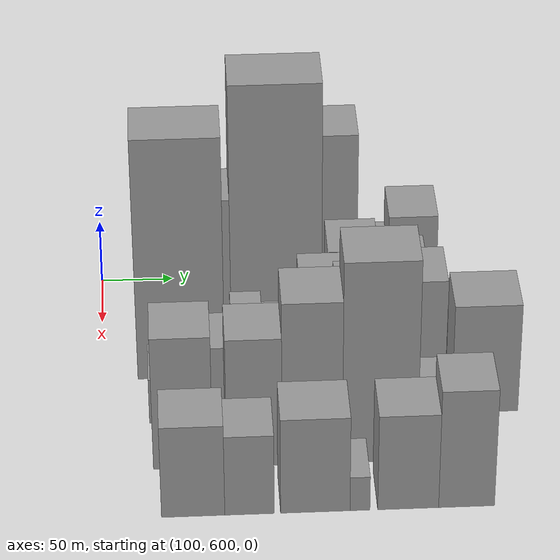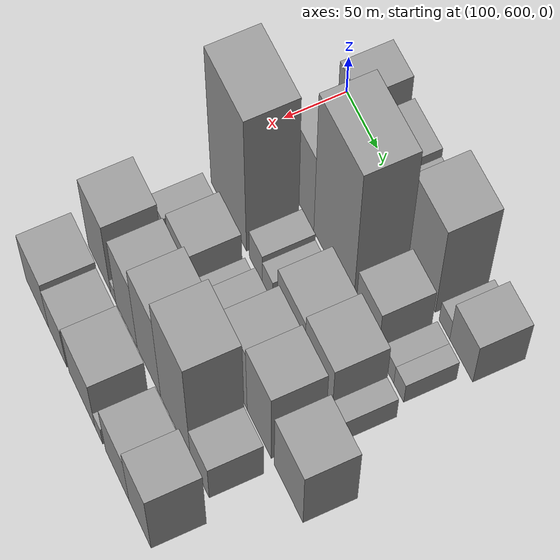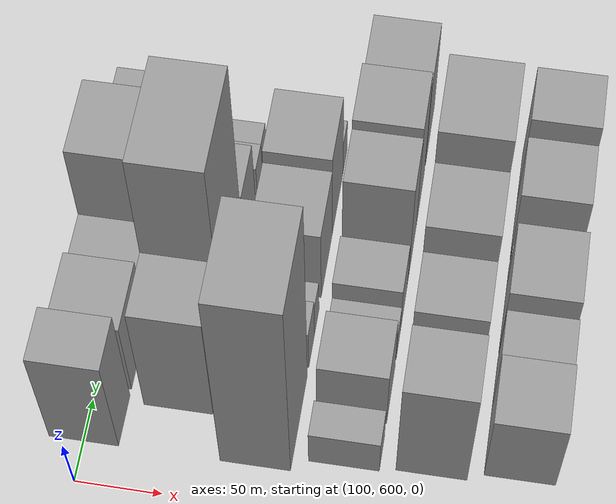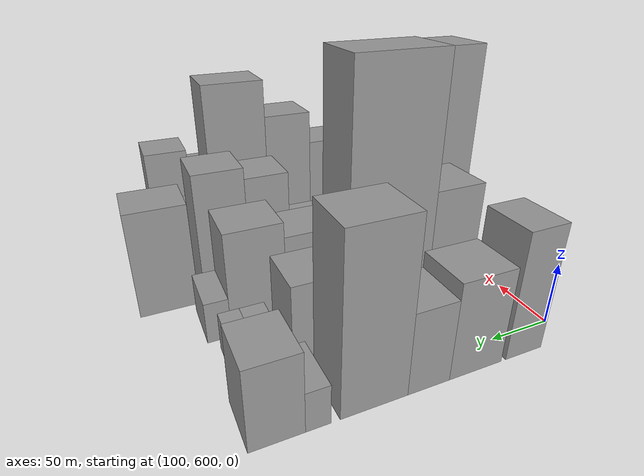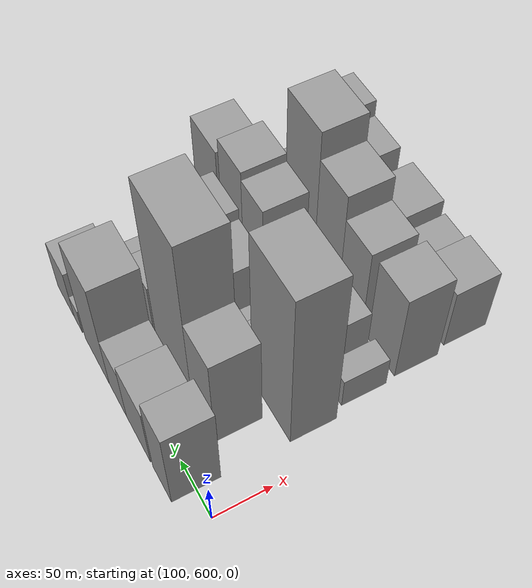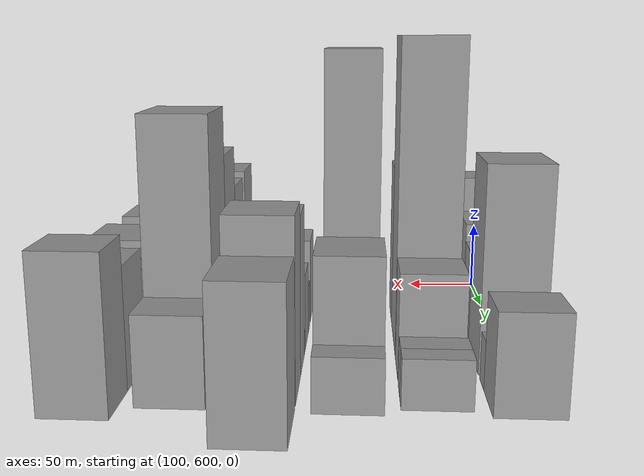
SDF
<sdf version="1.6">
 <world name="default">
  <model name="building_43">
   <static>1</static>
   <pose>100.0000 640.0904 0 0.000000 0.000000 0.000000</pose>
   <link name="link">
    <pose>0 0 49.50 0 0 0</pose>
    <collision name="collision"><geometry><box><size>40.0000 31.3254 99.0000</size></box></geometry></collision>
    <visual name="visual">
     <cast_shadows>0</cast_shadows>
     <geometry><box><size>40.0000 31.3254 99.0000</size></box></geometry>
     <material>
      <script>
       <uri>model://grey_wall/materials/scripts</uri>
       <uri>model://grey_wall/materials/textures</uri>
       <name>vrc/grey_wall</name>
      </script>
     </material>
    </visual>
   </link>
  </model>
  <model name="building_44">
   <static>1</static>
   <pose>100.0000 680.9795 0 0.000000 0.000000 0.000000</pose>
   <link name="link">
    <pose>0 0 37.50 0 0 0</pose>
    <collision name="collision"><geometry><box><size>40.0000 42.4528 75.0000</size></box></geometry></collision>
    <visual name="visual">
     <cast_shadows>0</cast_shadows>
     <geometry><box><size>40.0000 42.4528 75.0000</size></box></geometry>
     <material>
      <script>
       <uri>model://grey_wall/materials/scripts</uri>
       <uri>model://grey_wall/materials/textures</uri>
       <name>vrc/grey_wall</name>
      </script>
     </material>
    </visual>
   </link>
  </model>
  <model name="building_45">
   <static>1</static>
   <pose>100.0000 717.9744 0 0.000000 0.000000 0.000000</pose>
   <link name="link">
    <pose>0 0 31.50 0 0 0</pose>
    <collision name="collision"><geometry><box><size>40.0000 31.5372 63.0000</size></box></geometry></collision>
    <visual name="visual">
     <cast_shadows>0</cast_shadows>
     <geometry><box><size>40.0000 31.5372 63.0000</size></box></geometry>
     <material>
      <script>
       <uri>model://grey_wall/materials/scripts</uri>
       <uri>model://grey_wall/materials/textures</uri>
       <name>vrc/grey_wall</name>
      </script>
     </material>
    </visual>
   </link>
  </model>
  <model name="building_46">
   <static>1</static>
   <pose>100.0000 757.1625 0 0.000000 0.000000 0.000000</pose>
   <link name="link">
    <pose>0 0 64.50 0 0 0</pose>
    <collision name="collision"><geometry><box><size>40.0000 46.8390 129.0000</size></box></geometry></collision>
    <visual name="visual">
     <cast_shadows>0</cast_shadows>
     <geometry><box><size>40.0000 46.8390 129.0000</size></box></geometry>
     <material>
      <script>
       <uri>model://grey_wall/materials/scripts</uri>
       <uri>model://grey_wall/materials/textures</uri>
       <name>vrc/grey_wall</name>
      </script>
     </material>
    </visual>
   </link>
  </model>
  <model name="building_47">
   <static>1</static>
   <pose>100.0000 794.6642 0 0.000000 0.000000 0.000000</pose>
   <link name="link">
    <pose>0 0 15.00 0 0 0</pose>
    <collision name="collision"><geometry><box><size>40.0000 16.1645 30.0000</size></box></geometry></collision>
    <visual name="visual">
     <cast_shadows>0</cast_shadows>
     <geometry><box><size>40.0000 16.1645 30.0000</size></box></geometry>
     <material>
      <script>
       <uri>model://grey_wall/materials/scripts</uri>
       <uri>model://grey_wall/materials/textures</uri>
       <name>vrc/grey_wall</name>
      </script>
     </material>
    </visual>
   </link>
  </model>
  <model name="building_48">
   <static>1</static>
   <pose>100.0000 820.0291 0 0.000000 0.000000 0.000000</pose>
   <link name="link">
    <pose>0 0 30.00 0 0 0</pose>
    <collision name="collision"><geometry><box><size>40.0000 34.5654 60.0000</size></box></geometry></collision>
    <visual name="visual">
     <cast_shadows>0</cast_shadows>
     <geometry><box><size>40.0000 34.5654 60.0000</size></box></geometry>
     <material>
      <script>
       <uri>model://grey_wall/materials/scripts</uri>
       <uri>model://grey_wall/materials/textures</uri>
       <name>vrc/grey_wall</name>
      </script>
     </material>
    </visual>
   </link>
  </model>
  <model name="building_89">
   <static>1</static>
   <pose>149.0000 670.5965 0 0.000000 0.000000 0.000000</pose>
   <link name="link">
    <pose>0 0 55.50 0 0 0</pose>
    <collision name="collision"><geometry><box><size>40.0000 38.0225 111.0000</size></box></geometry></collision>
    <visual name="visual">
     <cast_shadows>0</cast_shadows>
     <geometry><box><size>40.0000 38.0225 111.0000</size></box></geometry>
     <material>
      <script>
       <uri>model://grey_wall/materials/scripts</uri>
       <uri>model://grey_wall/materials/textures</uri>
       <name>vrc/grey_wall</name>
      </script>
     </material>
    </visual>
   </link>
  </model>
  <model name="building_90">
   <static>1</static>
   <pose>149.0000 721.1269 0 0.000000 0.000000 0.000000</pose>
   <link name="link">
    <pose>0 0 100.50 0 0 0</pose>
    <collision name="collision"><geometry><box><size>40.0000 63.0383 201.0000</size></box></geometry></collision>
    <visual name="visual">
     <cast_shadows>0</cast_shadows>
     <geometry><box><size>40.0000 63.0383 201.0000</size></box></geometry>
     <material>
      <script>
       <uri>model://grey_wall/materials/scripts</uri>
       <uri>model://grey_wall/materials/textures</uri>
       <name>vrc/grey_wall</name>
      </script>
     </material>
    </visual>
   </link>
  </model>
  <model name="building_91">
   <static>1</static>
   <pose>149.0000 774.1519 0 0.000000 0.000000 0.000000</pose>
   <link name="link">
    <pose>0 0 33.00 0 0 0</pose>
    <collision name="collision"><geometry><box><size>40.0000 35.0117 66.0000</size></box></geometry></collision>
    <visual name="visual">
     <cast_shadows>0</cast_shadows>
     <geometry><box><size>40.0000 35.0117 66.0000</size></box></geometry>
     <material>
      <script>
       <uri>model://grey_wall/materials/scripts</uri>
       <uri>model://grey_wall/materials/textures</uri>
       <name>vrc/grey_wall</name>
      </script>
     </material>
    </visual>
   </link>
  </model>
  <model name="building_92">
   <static>1</static>
   <pose>149.0000 806.5773 0 0.000000 0.000000 0.000000</pose>
   <link name="link">
    <pose>0 0 15.00 0 0 0</pose>
    <collision name="collision"><geometry><box><size>40.0000 17.8391 30.0000</size></box></geometry></collision>
    <visual name="visual">
     <cast_shadows>0</cast_shadows>
     <geometry><box><size>40.0000 17.8391 30.0000</size></box></geometry>
     <material>
      <script>
       <uri>model://grey_wall/materials/scripts</uri>
       <uri>model://grey_wall/materials/textures</uri>
       <name>vrc/grey_wall</name>
      </script>
     </material>
    </visual>
   </link>
  </model>
  <model name="building_93">
   <static>1</static>
   <pose>149.0000 823.0445 0 0.000000 0.000000 0.000000</pose>
   <link name="link">
    <pose>0 0 15.00 0 0 0</pose>
    <collision name="collision"><geometry><box><size>40.0000 15.0952 30.0000</size></box></geometry></collision>
    <visual name="visual">
     <cast_shadows>0</cast_shadows>
     <geometry><box><size>40.0000 15.0952 30.0000</size></box></geometry>
     <material>
      <script>
       <uri>model://grey_wall/materials/scripts</uri>
       <uri>model://grey_wall/materials/textures</uri>
       <name>vrc/grey_wall</name>
      </script>
     </material>
    </visual>
   </link>
  </model>
  <model name="building_139">
   <static>1</static>
   <pose>198.0000 653.9900 0 0.000000 0.000000 0.000000</pose>
   <link name="link">
    <pose>0 0 96.00 0 0 0</pose>
    <collision name="collision"><geometry><box><size>40.0000 59.1294 192.0000</size></box></geometry></collision>
    <visual name="visual">
     <cast_shadows>0</cast_shadows>
     <geometry><box><size>40.0000 59.1294 192.0000</size></box></geometry>
     <material>
      <script>
       <uri>model://grey_wall/materials/scripts</uri>
       <uri>model://grey_wall/materials/textures</uri>
       <name>vrc/grey_wall</name>
      </script>
     </material>
    </visual>
   </link>
  </model>
  <model name="building_140">
   <static>1</static>
   <pose>198.0000 699.1258 0 0.000000 0.000000 0.000000</pose>
   <link name="link">
    <pose>0 0 21.00 0 0 0</pose>
    <collision name="collision"><geometry><box><size>40.0000 21.1423 42.0000</size></box></geometry></collision>
    <visual name="visual">
     <cast_shadows>0</cast_shadows>
     <geometry><box><size>40.0000 21.1423 42.0000</size></box></geometry>
     <material>
      <script>
       <uri>model://grey_wall/materials/scripts</uri>
       <uri>model://grey_wall/materials/textures</uri>
       <name>vrc/grey_wall</name>
      </script>
     </material>
    </visual>
   </link>
  </model>
  <model name="building_141">
   <static>1</static>
   <pose>198.0000 718.1942 0 0.000000 0.000000 0.000000</pose>
   <link name="link">
    <pose>0 0 16.50 0 0 0</pose>
    <collision name="collision"><geometry><box><size>40.0000 16.9943 33.0000</size></box></geometry></collision>
    <visual name="visual">
     <cast_shadows>0</cast_shadows>
     <geometry><box><size>40.0000 16.9943 33.0000</size></box></geometry>
     <material>
      <script>
       <uri>model://grey_wall/materials/scripts</uri>
       <uri>model://grey_wall/materials/textures</uri>
       <name>vrc/grey_wall</name>
      </script>
     </material>
    </visual>
   </link>
  </model>
  <model name="building_142">
   <static>1</static>
   <pose>198.0000 756.2207 0 0.000000 0.000000 0.000000</pose>
   <link name="link">
    <pose>0 0 36.00 0 0 0</pose>
    <collision name="collision"><geometry><box><size>40.0000 43.0588 72.0000</size></box></geometry></collision>
    <visual name="visual">
     <cast_shadows>0</cast_shadows>
     <geometry><box><size>40.0000 43.0588 72.0000</size></box></geometry>
     <material>
      <script>
       <uri>model://grey_wall/materials/scripts</uri>
       <uri>model://grey_wall/materials/textures</uri>
       <name>vrc/grey_wall</name>
      </script>
     </material>
    </visual>
   </link>
  </model>
  <model name="building_143">
   <static>1</static>
   <pose>198.0000 799.1212 0 0.000000 0.000000 0.000000</pose>
   <link name="link">
    <pose>0 0 42.00 0 0 0</pose>
    <collision name="collision"><geometry><box><size>40.0000 42.7421 84.0000</size></box></geometry></collision>
    <visual name="visual">
     <cast_shadows>0</cast_shadows>
     <geometry><box><size>40.0000 42.7421 84.0000</size></box></geometry>
     <material>
      <script>
       <uri>model://grey_wall/materials/scripts</uri>
       <uri>model://grey_wall/materials/textures</uri>
       <name>vrc/grey_wall</name>
      </script>
     </material>
    </visual>
   </link>
  </model>
  <model name="building_144">
   <static>1</static>
   <pose>198.0000 829.1901 0 0.000000 0.000000 0.000000</pose>
   <link name="link">
    <pose>0 0 16.50 0 0 0</pose>
    <collision name="collision"><geometry><box><size>40.0000 17.3957 33.0000</size></box></geometry></collision>
    <visual name="visual">
     <cast_shadows>0</cast_shadows>
     <geometry><box><size>40.0000 17.3957 33.0000</size></box></geometry>
     <material>
      <script>
       <uri>model://grey_wall/materials/scripts</uri>
       <uri>model://grey_wall/materials/textures</uri>
       <name>vrc/grey_wall</name>
      </script>
     </material>
    </visual>
   </link>
  </model>
  <model name="building_192">
   <static>1</static>
   <pose>247.0000 642.2842 0 0.000000 0.000000 0.000000</pose>
   <link name="link">
    <pose>0 0 18.00 0 0 0</pose>
    <collision name="collision"><geometry><box><size>40.0000 20.9779 36.0000</size></box></geometry></collision>
    <visual name="visual">
     <cast_shadows>0</cast_shadows>
     <geometry><box><size>40.0000 20.9779 36.0000</size></box></geometry>
     <material>
      <script>
       <uri>model://grey_wall/materials/scripts</uri>
       <uri>model://grey_wall/materials/textures</uri>
       <name>vrc/grey_wall</name>
      </script>
     </material>
    </visual>
   </link>
  </model>
  <model name="building_193">
   <static>1</static>
   <pose>247.0000 678.5500 0 0.000000 0.000000 0.000000</pose>
   <link name="link">
    <pose>0 0 30.00 0 0 0</pose>
    <collision name="collision"><geometry><box><size>40.0000 35.5537 60.0000</size></box></geometry></collision>
    <visual name="visual">
     <cast_shadows>0</cast_shadows>
     <geometry><box><size>40.0000 35.5537 60.0000</size></box></geometry>
     <material>
      <script>
       <uri>model://grey_wall/materials/scripts</uri>
       <uri>model://grey_wall/materials/textures</uri>
       <name>vrc/grey_wall</name>
      </script>
     </material>
    </visual>
   </link>
  </model>
  <model name="building_194">
   <static>1</static>
   <pose>247.0000 709.8683 0 0.000000 0.000000 0.000000</pose>
   <link name="link">
    <pose>0 0 16.50 0 0 0</pose>
    <collision name="collision"><geometry><box><size>40.0000 17.0828 33.0000</size></box></geometry></collision>
    <visual name="visual">
     <cast_shadows>0</cast_shadows>
     <geometry><box><size>40.0000 17.0828 33.0000</size></box></geometry>
     <material>
      <script>
       <uri>model://grey_wall/materials/scripts</uri>
       <uri>model://grey_wall/materials/textures</uri>
       <name>vrc/grey_wall</name>
      </script>
     </material>
    </visual>
   </link>
  </model>
  <model name="building_195">
   <static>1</static>
   <pose>247.0000 733.6955 0 0.000000 0.000000 0.000000</pose>
   <link name="link">
    <pose>0 0 25.50 0 0 0</pose>
    <collision name="collision"><geometry><box><size>40.0000 30.5718 51.0000</size></box></geometry></collision>
    <visual name="visual">
     <cast_shadows>0</cast_shadows>
     <geometry><box><size>40.0000 30.5718 51.0000</size></box></geometry>
     <material>
      <script>
       <uri>model://grey_wall/materials/scripts</uri>
       <uri>model://grey_wall/materials/textures</uri>
       <name>vrc/grey_wall</name>
      </script>
     </material>
    </visual>
   </link>
  </model>
  <model name="building_196">
   <static>1</static>
   <pose>247.0000 752.5104 0 0.000000 0.000000 0.000000</pose>
   <link name="link">
    <pose>0 0 7.50 0 0 0</pose>
    <collision name="collision"><geometry><box><size>40.0000 7.0580 15.0000</size></box></geometry></collision>
    <visual name="visual">
     <cast_shadows>0</cast_shadows>
     <geometry><box><size>40.0000 7.0580 15.0000</size></box></geometry>
     <material>
      <script>
       <uri>model://grey_wall/materials/scripts</uri>
       <uri>model://grey_wall/materials/textures</uri>
       <name>vrc/grey_wall</name>
      </script>
     </material>
    </visual>
   </link>
  </model>
  <model name="building_197">
   <static>1</static>
   <pose>247.0000 773.2701 0 0.000000 0.000000 0.000000</pose>
   <link name="link">
    <pose>0 0 49.50 0 0 0</pose>
    <collision name="collision"><geometry><box><size>40.0000 34.4614 99.0000</size></box></geometry></collision>
    <visual name="visual">
     <cast_shadows>0</cast_shadows>
     <geometry><box><size>40.0000 34.4614 99.0000</size></box></geometry>
     <material>
      <script>
       <uri>model://grey_wall/materials/scripts</uri>
       <uri>model://grey_wall/materials/textures</uri>
       <name>vrc/grey_wall</name>
      </script>
     </material>
    </visual>
   </link>
  </model>
  <model name="building_198">
   <static>1</static>
   <pose>247.0000 809.7124 0 0.000000 0.000000 0.000000</pose>
   <link name="link">
    <pose>0 0 54.00 0 0 0</pose>
    <collision name="collision"><geometry><box><size>40.0000 38.4231 108.0000</size></box></geometry></collision>
    <visual name="visual">
     <cast_shadows>0</cast_shadows>
     <geometry><box><size>40.0000 38.4231 108.0000</size></box></geometry>
     <material>
      <script>
       <uri>model://grey_wall/materials/scripts</uri>
       <uri>model://grey_wall/materials/textures</uri>
       <name>vrc/grey_wall</name>
      </script>
     </material>
    </visual>
   </link>
  </model>
  <model name="building_199">
   <static>1</static>
   <pose>247.0000 856.1668 0 0.000000 0.000000 0.000000</pose>
   <link name="link">
    <pose>0 0 43.50 0 0 0</pose>
    <collision name="collision"><geometry><box><size>40.0000 44.4856 87.0000</size></box></geometry></collision>
    <visual name="visual">
     <cast_shadows>0</cast_shadows>
     <geometry><box><size>40.0000 44.4856 87.0000</size></box></geometry>
     <material>
      <script>
       <uri>model://grey_wall/materials/scripts</uri>
       <uri>model://grey_wall/materials/textures</uri>
       <name>vrc/grey_wall</name>
      </script>
     </material>
    </visual>
   </link>
  </model>
  <model name="building_239">
   <static>1</static>
   <pose>296.0000 653.1803 0 0.000000 0.000000 0.000000</pose>
   <link name="link">
    <pose>0 0 52.50 0 0 0</pose>
    <collision name="collision"><geometry><box><size>40.0000 38.7190 105.0000</size></box></geometry></collision>
    <visual name="visual">
     <cast_shadows>0</cast_shadows>
     <geometry><box><size>40.0000 38.7190 105.0000</size></box></geometry>
     <material>
      <script>
       <uri>model://grey_wall/materials/scripts</uri>
       <uri>model://grey_wall/materials/textures</uri>
       <name>vrc/grey_wall</name>
      </script>
     </material>
    </visual>
   </link>
  </model>
  <model name="building_240">
   <static>1</static>
   <pose>296.0000 677.1005 0 0.000000 0.000000 0.000000</pose>
   <link name="link">
    <pose>0 0 10.50 0 0 0</pose>
    <collision name="collision"><geometry><box><size>40.0000 9.1214 21.0000</size></box></geometry></collision>
    <visual name="visual">
     <cast_shadows>0</cast_shadows>
     <geometry><box><size>40.0000 9.1214 21.0000</size></box></geometry>
     <material>
      <script>
       <uri>model://grey_wall/materials/scripts</uri>
       <uri>model://grey_wall/materials/textures</uri>
       <name>vrc/grey_wall</name>
      </script>
     </material>
    </visual>
   </link>
  </model>
  <model name="building_241">
   <static>1</static>
   <pose>296.0000 699.7545 0 0.000000 0.000000 0.000000</pose>
   <link name="link">
    <pose>0 0 51.00 0 0 0</pose>
    <collision name="collision"><geometry><box><size>40.0000 36.1865 102.0000</size></box></geometry></collision>
    <visual name="visual">
     <cast_shadows>0</cast_shadows>
     <geometry><box><size>40.0000 36.1865 102.0000</size></box></geometry>
     <material>
      <script>
       <uri>model://grey_wall/materials/scripts</uri>
       <uri>model://grey_wall/materials/textures</uri>
       <name>vrc/grey_wall</name>
      </script>
     </material>
    </visual>
   </link>
  </model>
  <model name="building_242">
   <static>1</static>
   <pose>296.0000 737.5448 0 0.000000 0.000000 0.000000</pose>
   <link name="link">
    <pose>0 0 64.50 0 0 0</pose>
    <collision name="collision"><geometry><box><size>40.0000 39.3942 129.0000</size></box></geometry></collision>
    <visual name="visual">
     <cast_shadows>0</cast_shadows>
     <geometry><box><size>40.0000 39.3942 129.0000</size></box></geometry>
     <material>
      <script>
       <uri>model://grey_wall/materials/scripts</uri>
       <uri>model://grey_wall/materials/textures</uri>
       <name>vrc/grey_wall</name>
      </script>
     </material>
    </visual>
   </link>
  </model>
  <model name="building_243">
   <static>1</static>
   <pose>296.0000 781.8536 0 0.000000 0.000000 0.000000</pose>
   <link name="link">
    <pose>0 0 79.50 0 0 0</pose>
    <collision name="collision"><geometry><box><size>40.0000 49.2233 159.0000</size></box></geometry></collision>
    <visual name="visual">
     <cast_shadows>0</cast_shadows>
     <geometry><box><size>40.0000 49.2233 159.0000</size></box></geometry>
     <material>
      <script>
       <uri>model://grey_wall/materials/scripts</uri>
       <uri>model://grey_wall/materials/textures</uri>
       <name>vrc/grey_wall</name>
      </script>
     </material>
    </visual>
   </link>
  </model>
  <model name="building_244">
   <static>1</static>
   <pose>296.0000 821.4788 0 0.000000 0.000000 0.000000</pose>
   <link name="link">
    <pose>0 0 27.00 0 0 0</pose>
    <collision name="collision"><geometry><box><size>40.0000 30.0270 54.0000</size></box></geometry></collision>
    <visual name="visual">
     <cast_shadows>0</cast_shadows>
     <geometry><box><size>40.0000 30.0270 54.0000</size></box></geometry>
     <material>
      <script>
       <uri>model://grey_wall/materials/scripts</uri>
       <uri>model://grey_wall/materials/textures</uri>
       <name>vrc/grey_wall</name>
      </script>
     </material>
    </visual>
   </link>
  </model>
  <model name="building_290">
   <static>1</static>
   <pose>345.0000 658.5603 0 0.000000 0.000000 0.000000</pose>
   <link name="link">
    <pose>0 0 36.00 0 0 0</pose>
    <collision name="collision"><geometry><box><size>40.0000 40.4305 72.0000</size></box></geometry></collision>
    <visual name="visual">
     <cast_shadows>0</cast_shadows>
     <geometry><box><size>40.0000 40.4305 72.0000</size></box></geometry>
     <material>
      <script>
       <uri>model://grey_wall/materials/scripts</uri>
       <uri>model://grey_wall/materials/textures</uri>
       <name>vrc/grey_wall</name>
      </script>
     </material>
    </visual>
   </link>
  </model>
  <model name="building_291">
   <static>1</static>
   <pose>345.0000 694.6043 0 0.000000 0.000000 0.000000</pose>
   <link name="link">
    <pose>0 0 31.50 0 0 0</pose>
    <collision name="collision"><geometry><box><size>40.0000 31.6576 63.0000</size></box></geometry></collision>
    <visual name="visual">
     <cast_shadows>0</cast_shadows>
     <geometry><box><size>40.0000 31.6576 63.0000</size></box></geometry>
     <material>
      <script>
       <uri>model://grey_wall/materials/scripts</uri>
       <uri>model://grey_wall/materials/textures</uri>
       <name>vrc/grey_wall</name>
      </script>
     </material>
    </visual>
   </link>
  </model>
  <model name="building_292">
   <static>1</static>
   <pose>345.0000 736.6816 0 0.000000 0.000000 0.000000</pose>
   <link name="link">
    <pose>0 0 37.50 0 0 0</pose>
    <collision name="collision"><geometry><box><size>40.0000 44.4971 75.0000</size></box></geometry></collision>
    <visual name="visual">
     <cast_shadows>0</cast_shadows>
     <geometry><box><size>40.0000 44.4971 75.0000</size></box></geometry>
     <material>
      <script>
       <uri>model://grey_wall/materials/scripts</uri>
       <uri>model://grey_wall/materials/textures</uri>
       <name>vrc/grey_wall</name>
      </script>
     </material>
    </visual>
   </link>
  </model>
  <model name="building_293">
   <static>1</static>
   <pose>345.0000 765.3324 0 0.000000 0.000000 0.000000</pose>
   <link name="link">
    <pose>0 0 13.50 0 0 0</pose>
    <collision name="collision"><geometry><box><size>40.0000 12.8044 27.0000</size></box></geometry></collision>
    <visual name="visual">
     <cast_shadows>0</cast_shadows>
     <geometry><box><size>40.0000 12.8044 27.0000</size></box></geometry>
     <material>
      <script>
       <uri>model://grey_wall/materials/scripts</uri>
       <uri>model://grey_wall/materials/textures</uri>
       <name>vrc/grey_wall</name>
      </script>
     </material>
    </visual>
   </link>
  </model>
  <model name="building_294">
   <static>1</static>
   <pose>345.0000 796.3186 0 0.000000 0.000000 0.000000</pose>
   <link name="link">
    <pose>0 0 37.50 0 0 0</pose>
    <collision name="collision"><geometry><box><size>40.0000 39.1681 75.0000</size></box></geometry></collision>
    <visual name="visual">
     <cast_shadows>0</cast_shadows>
     <geometry><box><size>40.0000 39.1681 75.0000</size></box></geometry>
     <material>
      <script>
       <uri>model://grey_wall/materials/scripts</uri>
       <uri>model://grey_wall/materials/textures</uri>
       <name>vrc/grey_wall</name>
      </script>
     </material>
    </visual>
   </link>
  </model>
  <model name="building_295">
   <static>1</static>
   <pose>345.0000 833.8856 0 0.000000 0.000000 0.000000</pose>
   <link name="link">
    <pose>0 0 46.50 0 0 0</pose>
    <collision name="collision"><geometry><box><size>40.0000 35.9658 93.0000</size></box></geometry></collision>
    <visual name="visual">
     <cast_shadows>0</cast_shadows>
     <geometry><box><size>40.0000 35.9658 93.0000</size></box></geometry>
     <material>
      <script>
       <uri>model://grey_wall/materials/scripts</uri>
       <uri>model://grey_wall/materials/textures</uri>
       <name>vrc/grey_wall</name>
      </script>
     </material>
    </visual>
   </link>
  </model>
 </world>
</sdf>
